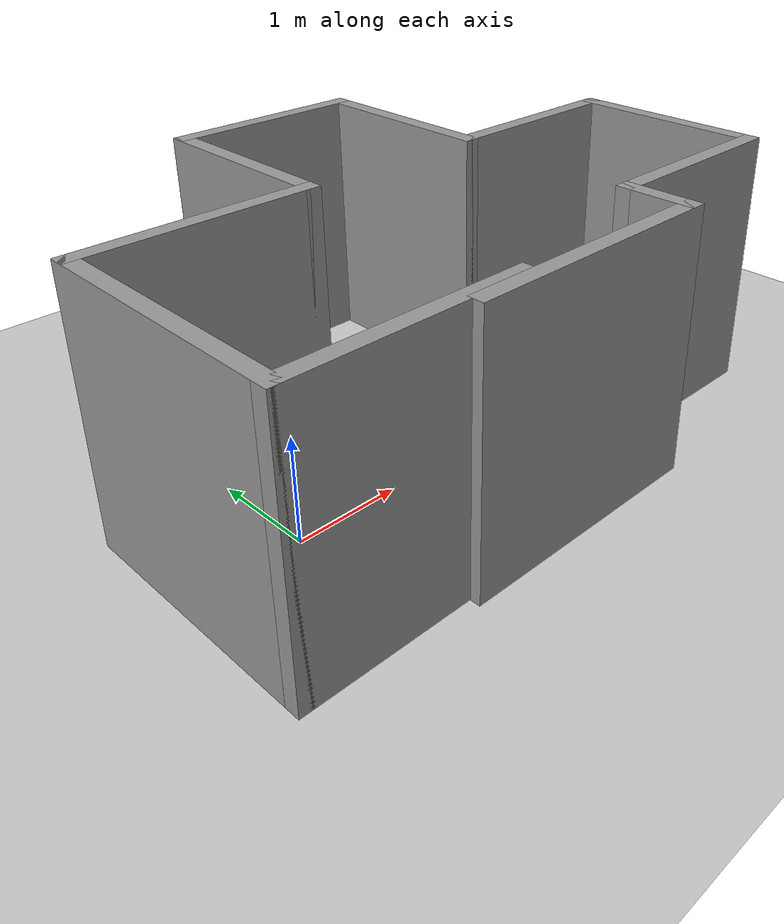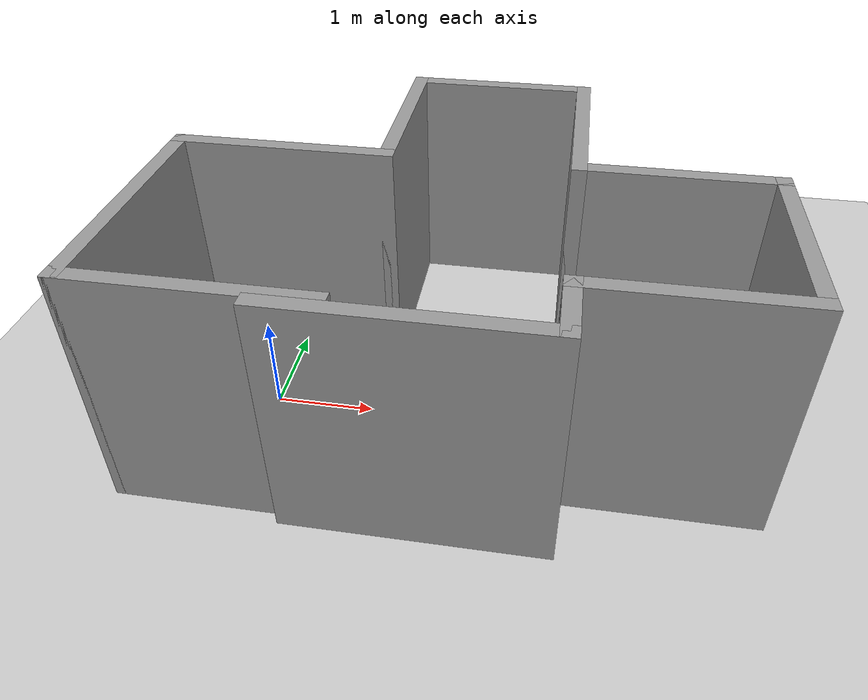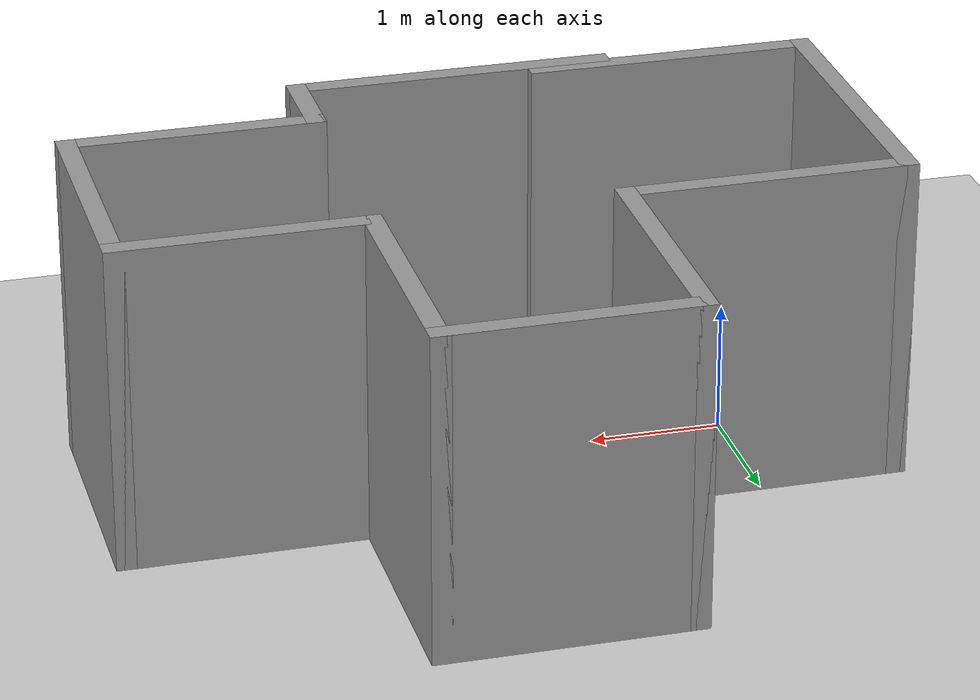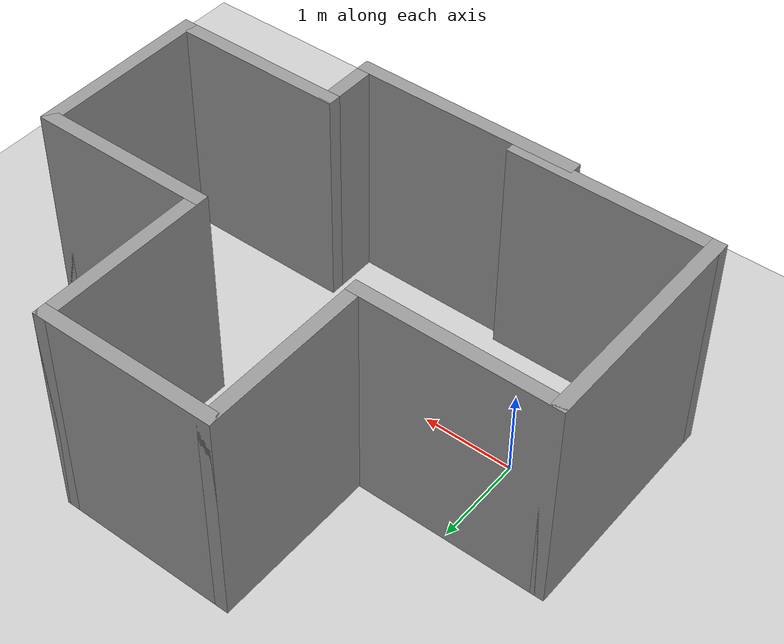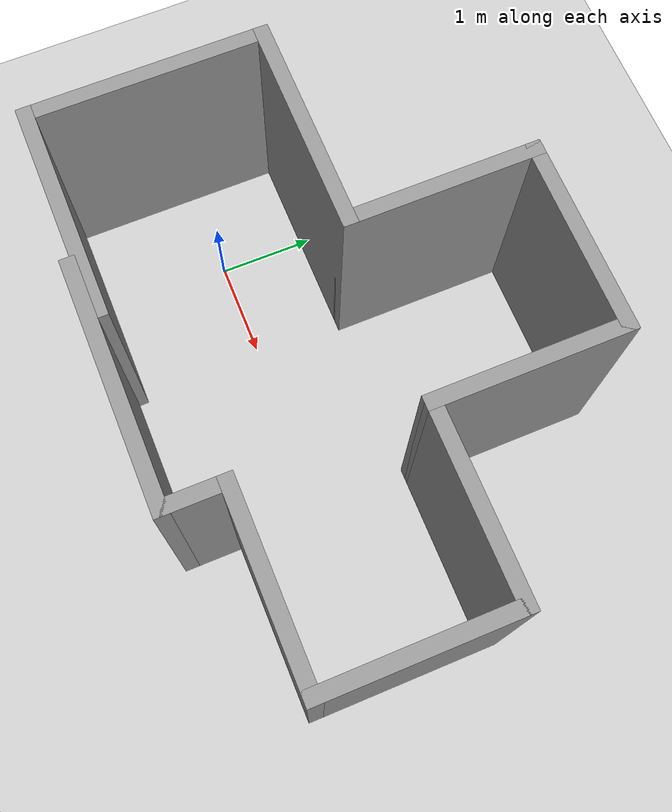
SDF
<sdf version="1.7">
 <world name="default">
  <light name="sun" type="directional">
   <pose>0 0 10 0 -0 0</pose>
   <diffuse>0.8 0.8 0.8 1</diffuse>
   <specular>0.2 0.2 0.2 1</specular>
   <attenuation>
    <range>1000</range>
    <constant>0.9</constant>
    <linear>0.01</linear>
    <quadratic>0.001</quadratic>
   </attenuation>
   <direction>-0.5 0.1 -0.9</direction>
   <spot><inner_angle>0</inner_angle><outer_angle>0</outer_angle><falloff>0</falloff></spot>
  </light>
  <model name="ground_plane">
   <static>1</static>
   <link name="link">
    <collision name="collision">
     <geometry><plane><normal>0 0 1</normal><size>100 100</size></plane></geometry>
     <surface><friction><ode><mu>100</mu><mu2>50</mu2></ode></friction></surface>
    </collision>
    <visual name="visual">
     <cast_shadows>0</cast_shadows>
     <geometry><plane><normal>0 0 1</normal><size>100 100</size></plane></geometry>
     <material>
      <script><uri>file://media/materials/scripts/gazebo.material</uri><name>Gazebo/Grey</name></script>
     </material>
    </visual>
   </link>
  </model>
  <gravity>0 0 -9.8</gravity>
  <magnetic_field>6e-06 2.3e-05 -4.2e-05</magnetic_field>
  <atmosphere type="adiabatic"/>
  <physics type="ode">
   <max_step_size>0.001</max_step_size>
   <real_time_factor>1</real_time_factor>
   <real_time_update_rate>1000</real_time_update_rate>
  </physics>
  <scene><ambient>0.4 0.4 0.4 1</ambient><background>0.7 0.7 0.7 1</background><shadows>1</shadows></scene>
  <audio><device>default</device></audio>
  <spherical_coordinates>
   <surface_model>EARTH_WGS84</surface_model>
   <latitude_deg>0</latitude_deg>
   <longitude_deg>0</longitude_deg>
   <elevation>0</elevation>
   <heading_deg>0</heading_deg>
  </spherical_coordinates>
  <model name="Untitled3">
   <pose>1.856 0.683784 0 0 -0 0</pose>
   <link name="Wall_10">
    <collision name="Wall_10_Collision">
     <geometry><box><size>2.25 0.15 2.5</size></box></geometry>
     <pose>0 0 1.25 0 -0 0</pose>
    </collision>
    <visual name="Wall_10_Visual">
     <pose>0 0 1.25 0 -0 0</pose>
     <geometry><box><size>2.25 0.15 2.5</size></box></geometry>
     <material>
      <script><uri>file://media/materials/scripts/gazebo.material</uri><name>Gazebo/Grey</name></script>
      <ambient>1 1 1 1</ambient>
     </material>
     <meta><layer>0</layer></meta>
    </visual>
    <pose>-1.85 0.3 0 0 -0 0</pose>
   </link>
   <link name="Wall_11">
    <collision name="Wall_11_Collision">
     <geometry><box><size>2 0.15 2.5</size></box></geometry>
     <pose>0 0 1.25 0 -0 0</pose>
    </collision>
    <visual name="Wall_11_Visual">
     <pose>0 0 1.25 0 -0 0</pose>
     <geometry><box><size>2 0.15 2.5</size></box></geometry>
     <material>
      <script><uri>file://media/materials/scripts/gazebo.material</uri><name>Gazebo/Grey</name></script>
      <ambient>1 1 1 1</ambient>
     </material>
     <meta><layer>0</layer></meta>
    </visual>
    <pose>-0.8 1.225 0 0 -0 1.5708</pose>
   </link>
   <link name="Wall_12">
    <collision name="Wall_12_Collision">
     <geometry><box><size>2 0.15 2.5</size></box></geometry>
     <pose>0 0 1.25 0 -0 0</pose>
    </collision>
    <visual name="Wall_12_Visual">
     <pose>0 0 1.25 0 -0 0</pose>
     <geometry><box><size>2 0.15 2.5</size></box></geometry>
     <material>
      <script><uri>file://media/materials/scripts/gazebo.material</uri><name>Gazebo/Grey</name></script>
      <ambient>1 1 1 1</ambient>
     </material>
     <meta><layer>0</layer></meta>
    </visual>
    <pose>0.125 2.15 0 0 -0 0</pose>
   </link>
   <link name="Wall_13">
    <collision name="Wall_13_Collision">
     <geometry><box><size>2 0.15 2.5</size></box></geometry>
     <pose>0 0 1.25 0 -0 0</pose>
    </collision>
    <visual name="Wall_13_Visual">
     <pose>0 0 1.25 0 -0 0</pose>
     <geometry><box><size>2 0.15 2.5</size></box></geometry>
     <material>
      <script><uri>file://media/materials/scripts/gazebo.material</uri><name>Gazebo/Grey</name></script>
      <ambient>1 1 1 1</ambient>
     </material>
     <meta><layer>0</layer></meta>
    </visual>
    <pose>1.05 1.225 0 0 -0 -1.5708</pose>
   </link>
   <link name="Wall_14">
    <collision name="Wall_14_Collision">
     <geometry><box><size>2 0.15 2.5</size></box></geometry>
     <pose>0 0 1.25 0 -0 0</pose>
    </collision>
    <visual name="Wall_14_Visual">
     <pose>0 0 1.25 0 -0 0</pose>
     <geometry><box><size>2 0.15 2.5</size></box></geometry>
     <material>
      <script><uri>file://media/materials/scripts/gazebo.material</uri><name>Gazebo/Grey</name></script>
      <ambient>1 1 1 1</ambient>
     </material>
     <meta><layer>0</layer></meta>
    </visual>
    <pose>1.975 0.3 0 0 -0 0</pose>
   </link>
   <link name="Wall_15">
    <collision name="Wall_15_Collision">
     <geometry><box><size>2 0.15 2.5</size></box></geometry>
     <pose>0 0 1.25 0 -0 0</pose>
    </collision>
    <visual name="Wall_15_Visual">
     <pose>0 0 1.25 0 -0 0</pose>
     <geometry><box><size>2 0.15 2.5</size></box></geometry>
     <material>
      <script><uri>file://media/materials/scripts/gazebo.material</uri><name>Gazebo/Grey</name></script>
      <ambient>1 1 1 1</ambient>
     </material>
     <meta><layer>0</layer></meta>
    </visual>
    <pose>2.9 -0.625 0 0 -0 -1.5708</pose>
   </link>
   <link name="Wall_16">
    <collision name="Wall_16_Collision">
     <geometry><box><size>2 0.15 2.5</size></box></geometry>
     <pose>0 0 1.25 0 -0 0</pose>
    </collision>
    <visual name="Wall_16_Visual">
     <pose>0 0 1.25 0 -0 0</pose>
     <geometry><box><size>2 0.15 2.5</size></box></geometry>
     <material>
      <script><uri>file://media/materials/scripts/gazebo.material</uri><name>Gazebo/Grey</name></script>
      <ambient>1 1 1 1</ambient>
     </material>
     <meta><layer>0</layer></meta>
    </visual>
    <pose>1.975 -1.55 0 0 -0 3.14159</pose>
   </link>
   <link name="Wall_17">
    <collision name="Wall_17_Collision">
     <geometry><box><size>0.75 0.15 2.5</size></box></geometry>
     <pose>0 0 1.25 0 -0 0</pose>
    </collision>
    <visual name="Wall_17_Visual">
     <pose>0 0 1.25 0 -0 0</pose>
     <geometry><box><size>0.75 0.15 2.5</size></box></geometry>
     <material>
      <script><uri>file://media/materials/scripts/gazebo.material</uri><name>Gazebo/Grey</name></script>
      <ambient>1 1 1 1</ambient>
     </material>
     <meta><layer>0</layer></meta>
    </visual>
    <pose>1.05 -1.85 0 0 -0 -1.5708</pose>
   </link>
   <link name="Wall_18">
    <collision name="Wall_18_Collision">
     <geometry><box><size>2.5 0.15 2.5</size></box></geometry>
     <pose>0 0 1.25 0 -0 0</pose>
    </collision>
    <visual name="Wall_18_Visual">
     <pose>0 0 1.25 0 -0 0</pose>
     <geometry><box><size>2.5 0.15 2.5</size></box></geometry>
     <material>
      <script><uri>file://media/materials/scripts/gazebo.material</uri><name>Gazebo/Grey</name></script>
      <ambient>1 1 1 1</ambient>
     </material>
     <meta><layer>0</layer></meta>
    </visual>
    <pose>-0.125 -2.15 0 0 -0 3.14159</pose>
   </link>
   <link name="Wall_7">
    <collision name="Wall_7_Collision">
     <geometry><box><size>2.25 0.15 2.5</size></box></geometry>
     <pose>0 0 1.25 0 -0 0</pose>
    </collision>
    <visual name="Wall_7_Visual">
     <pose>0 0 1.25 0 -0 0</pose>
     <geometry><box><size>2.25 0.15 2.5</size></box></geometry>
     <material>
      <script><uri>file://media/materials/scripts/gazebo.material</uri><name>Gazebo/Grey</name></script>
      <ambient>1 1 1 1</ambient>
     </material>
     <meta><layer>0</layer></meta>
    </visual>
    <pose>-1.85 -2.05 0 0 -0 0</pose>
   </link>
   <link name="Wall_9">
    <collision name="Wall_9_Collision">
     <geometry><box><size>2.5 0.15 2.5</size></box></geometry>
     <pose>0 0 1.25 0 -0 0</pose>
    </collision>
    <visual name="Wall_9_Visual">
     <pose>0 0 1.25 0 -0 0</pose>
     <geometry><box><size>2.5 0.15 2.5</size></box></geometry>
     <material>
      <script><uri>file://media/materials/scripts/gazebo.material</uri><name>Gazebo/Grey</name></script>
      <ambient>1 1 1 1</ambient>
     </material>
     <meta><layer>0</layer></meta>
    </visual>
    <pose>-2.9 -0.875 0 0 -0 1.5708</pose>
   </link>
   <static>1</static>
  </model>
 </world>
</sdf>
